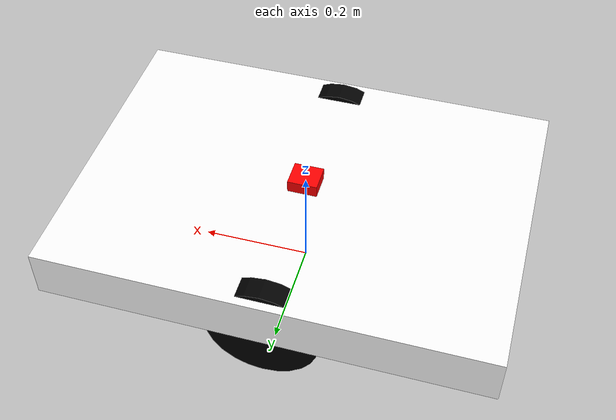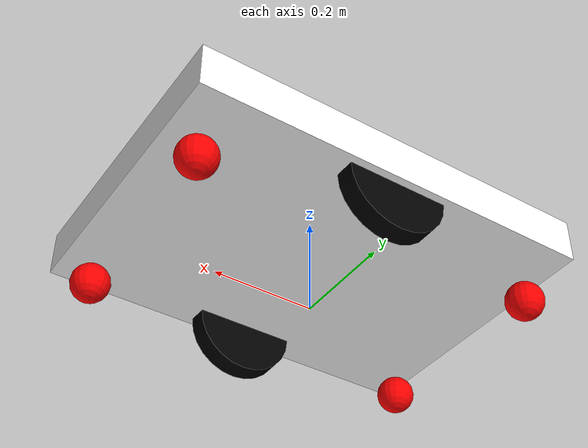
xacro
<?xml version="1.0"?>
<robot xmlns:xacro="http://www.ros.org/wiki/xacro" >

    <xacro:include filename="inertial_macros.xacro"/>

    <xacro:property name="chassis_length" value="0.80"/>
    <xacro:property name="chassis_width" value="0.58"/>
    <xacro:property name="chassis_height" value="0.09"/>
    <xacro:property name="chassis_mass" value="1.0"/>
    <xacro:property name="wheel_radius" value="0.1"/>
    <xacro:property name="wheel_thickness" value="0.04"/>
    <xacro:property name="wheel_mass" value="0.05"/>
    <xacro:property name="wheel_offset_x" value="0.40"/>
    <xacro:property name="wheel_offset_y" value="0.255"/>

    <xacro:property name="caster_wheel_radius" value="0.038"/>
    <xacro:property name="caster_wheel_mass" value="0.01"/>
    <xacro:property name="caster_z_offset" value="-0.062"/>

    <material name="white"><color rgba="1 1 1 1" /></material>
    <material name="black"><color rgba="0 0 0 1"/></material>
    <material name="red"><color rgba="1 0 0 1"/></material>

    <link name="base_footprint"/>

    <joint name="base_footprint_joint" type="fixed">
        <parent link="base_footprint"/>
        <child link="base_link"/>
        <origin xyz="0 0 ${wheel_radius}" rpy="0 0 0"/>
    </joint>

    <link name="base_link">
        <visual>
            <origin xyz="${(chassis_length/2) - wheel_offset_x} 0 ${chassis_height/2}"/>
            <geometry>
                <box size="${chassis_length} ${chassis_width} ${chassis_height}"/>
            </geometry>
            <material name="white"/>
        </visual>
        <collision>
            <origin xyz="${(chassis_length/2) - wheel_offset_x} 0 ${chassis_height/2}"/>
            <geometry>
                <box size="${chassis_length} ${chassis_width} ${chassis_height}"/>
            </geometry>
        </collision>
        <xacro:inertial_box mass="${chassis_mass}" x="${chassis_length}" y="${chassis_width}" z="${chassis_height}">
            <origin xyz="${(chassis_length/2) - wheel_offset_x} 0 ${chassis_height/2}" rpy="0 0 0"/>
        </xacro:inertial_box>
    </link>

    <gazebo reference="base_link">
        <material>Gazebo/White</material>
    </gazebo>

    <joint name="left_wheel_joint" type="continuous">
        <parent link="base_link"/>
        <child link="left_wheel"/>
        <origin xyz="0 ${wheel_offset_y} 0" rpy="-${pi/2} 0 0" />
        <axis xyz="0 0 1"/>
    </joint>

    <link name="left_wheel">
        <visual>
            <geometry><cylinder radius="${wheel_radius}" length="${wheel_thickness}"/></geometry>
            <material name="black"/>
        </visual>
        <collision>
            <geometry><sphere radius="${wheel_radius}"/></geometry>
        </collision>
        <xacro:inertial_cylinder mass="${wheel_mass}" length="${wheel_thickness}" radius="${wheel_radius}">
            <origin xyz="0 0 0" rpy="0 0 0"/>
        </xacro:inertial_cylinder>
    </link>

    <joint name="right_wheel_joint" type="continuous">
        <parent link="base_link"/>
        <child link="right_wheel"/>
        <origin xyz="0 ${-wheel_offset_y} 0" rpy="${pi/2} 0 0" />
        <axis xyz="0 0 -1"/>
    </joint>

    <link name="right_wheel">
        <visual>
            <geometry><cylinder radius="${wheel_radius}" length="${wheel_thickness}"/></geometry>
            <material name="black"/>
        </visual>
        <collision>
            <geometry><sphere radius="${wheel_radius}"/></geometry>
        </collision>
        <xacro:inertial_cylinder mass="${wheel_mass}" length="${wheel_thickness}" radius="${wheel_radius}">
            <origin xyz="0 0 0" rpy="0 0 0"/>
        </xacro:inertial_cylinder>
    </link>

    <joint name="caster_front_left_joint" type="fixed">
        <parent link="base_link"/>
        <child link="caster_front_left"/>
        <origin xyz="${0.75 - wheel_offset_x} 0.20 ${caster_z_offset}"/>
    </joint>
    <link name="caster_front_left">
        <visual>
            <geometry><sphere radius="${caster_wheel_radius}"/></geometry>
            <material name="red"/>
        </visual>
        <collision>
            <geometry><sphere radius="${caster_wheel_radius}"/></geometry>
        </collision>
        <xacro:inertial_sphere mass="${caster_wheel_mass}" radius="${caster_wheel_radius}">
            <origin xyz="0 0 0" rpy="0 0 0"/>
        </xacro:inertial_sphere>
    </link>

    <joint name="caster_front_right_joint" type="fixed">
        <parent link="base_link"/>
        <child link="caster_front_right"/>
        <origin xyz="${0.75 - wheel_offset_x} -0.20 ${caster_z_offset}"/>
    </joint>
    <link name="caster_front_right">
        <visual>
            <geometry><sphere radius="${caster_wheel_radius}"/></geometry>
            <material name="red"/>
        </visual>
        <collision>
            <geometry><sphere radius="${caster_wheel_radius}"/></geometry>
        </collision>
        <xacro:inertial_sphere mass="${caster_wheel_mass}" radius="${caster_wheel_radius}">
            <origin xyz="0 0 0" rpy="0 0 0"/>
        </xacro:inertial_sphere>
    </link>

    <joint name="caster_rear_left_joint" type="fixed">
        <parent link="base_link"/>
        <child link="caster_rear_left"/>
        <origin xyz="${0.05 - wheel_offset_x} 0.20 ${caster_z_offset}"/>
    </joint>
    <link name="caster_rear_left">
        <visual>
            <geometry><sphere radius="${caster_wheel_radius}"/></geometry>
            <material name="red"/>
        </visual>
        <collision>
            <geometry><sphere radius="${caster_wheel_radius}"/></geometry>
        </collision>
        <xacro:inertial_sphere mass="${caster_wheel_mass}" radius="${caster_wheel_radius}">
            <origin xyz="0 0 0" rpy="0 0 0"/>
        </xacro:inertial_sphere>
    </link>

    <joint name="caster_rear_right_joint" type="fixed">
        <parent link="base_link"/>
        <child link="caster_rear_right"/>
        <origin xyz="${0.05 - wheel_offset_x} -0.20 ${caster_z_offset}"/>
    </joint>
    <link name="caster_rear_right">
        <visual>
            <geometry><sphere radius="${caster_wheel_radius}"/></geometry>
            <material name="red"/>
        </visual>
        <collision>
            <geometry><sphere radius="${caster_wheel_radius}"/></geometry>
        </collision>
        <xacro:inertial_sphere mass="${caster_wheel_mass}" radius="${caster_wheel_radius}">
            <origin xyz="0 0 0" rpy="0 0 0"/>
        </xacro:inertial_sphere>
    </link>

    <joint name="imu_joint" type="fixed">
        <parent link="base_link"/>
        <child link="imu_link"/>
        <origin xyz="${0.4 - wheel_offset_x} 0 0.10" rpy="0 0 0"/>
    </joint>

    <link name="imu_link">
        <visual>
            <geometry><box size="0.0538 0.0488 0.0252"/></geometry>
            <material name="red"/>
        </visual>
        <collision>
            <geometry><box size="0.0538 0.0488 0.0252"/></geometry>
        </collision>
        <inertial>
            <mass value="0.01"/>
            <origin xyz="0 0 0" rpy="0 0 0"/>
            <inertia ixx="0.0001" ixy="0" ixz="0" iyy="0.0001" iyz="0" izz="0.0001"/>
        </inertial>
    </link>

</robot>
